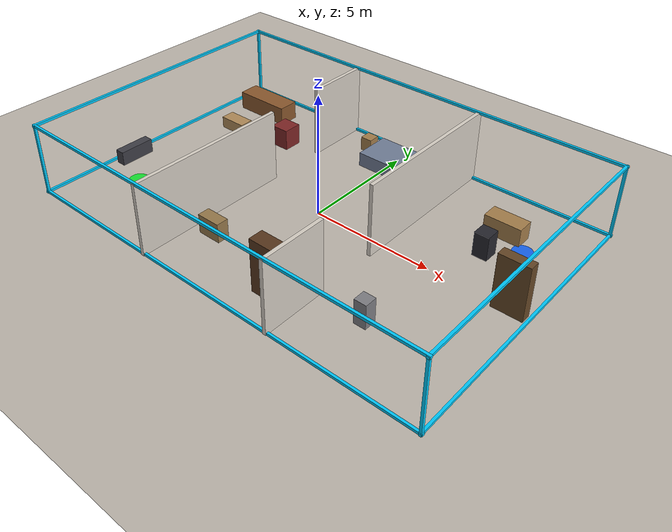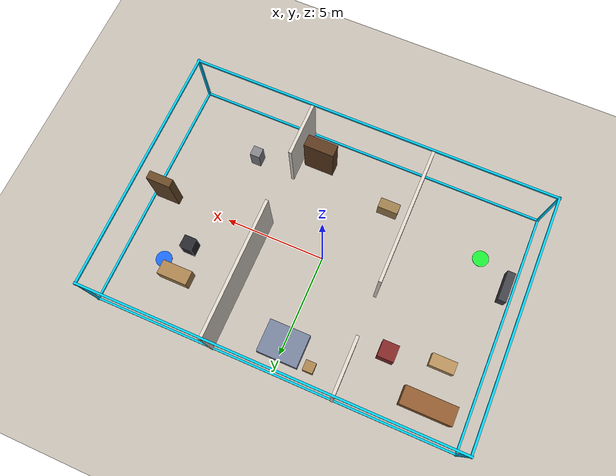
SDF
<?xml version="1.0" ?>
<sdf version="1.9">
  <world name="house_3room">
    <physics type="ode">
      <max_step_size>0.004</max_step_size>
      <real_time_factor>1.0</real_time_factor>
      <real_time_update_rate>250</real_time_update_rate>
    </physics>
    <plugin name="gz::sim::systems::Physics" filename="gz-sim-physics-system"/>
    <plugin name="gz::sim::systems::UserCommands" filename="gz-sim-user-commands-system"/>
    <plugin name="gz::sim::systems::SceneBroadcaster" filename="gz-sim-scene-broadcaster-system"/>
    <plugin name="gz::sim::systems::Contact" filename="gz-sim-contact-system"/>
    <plugin name="gz::sim::systems::Imu" filename="gz-sim-imu-system"/>
    <plugin name="gz::sim::systems::AirPressure" filename="gz-sim-air-pressure-system"/>
    <plugin name="gz::sim::systems::ApplyLinkWrench" filename="gz-sim-apply-link-wrench-system"/>
    <plugin name="gz::sim::systems::Sensors" filename="gz-sim-sensors-system">
      <render_engine>ogre2</render_engine>
    </plugin>
    <gui fullscreen="false"/>

    <!-- Sunlight -->
    <light type="directional" name="sun">
      <cast_shadows>true</cast_shadows>
      <pose>0 0 10 0 0 0</pose>
      <diffuse>0.8 0.8 0.8 1</diffuse>
      <specular>0.2 0.2 0.2 1</specular>
      <attenuation>
        <range>1000</range>
        <constant>0.9</constant>
        <linear>0.01</linear>
        <quadratic>0.001</quadratic>
      </attenuation>
      <direction>-0.5 0.1 -0.9</direction>
    </light>

    <!-- GROUND PLANE — 18m x 12m                                     -->
    <model name="ground_plane">
      <static>true</static>
      <pose>0 0 0 0 0 0</pose>
      <link name="link">
        <collision name="collision">
          <geometry><plane><normal>0 0 1</normal><size>18 12</size></plane></geometry>
          <surface>
            <friction><ode><mu>100</mu><mu2>50</mu2></ode></friction>
          </surface>
        </collision>
        <visual name="visual">
          <geometry><plane><normal>0 0 1</normal><size>18 12</size></plane></geometry>
          <material>
            <ambient>0.75 0.72 0.68 1</ambient>
            <diffuse>0.75 0.72 0.68 1</diffuse>
          </material>
        </visual>
      </link>
    </model>

    <!-- OUTER WALLS — Invisible collisions + cyan wireframe          -->
    <!-- House: 18m wide (X: -9 to +9) × 12m deep (Y: -6 to +6)     -->
    <model name="outer_walls">
      <static>true</static>
      <link name="walls_link">
        <!-- Solid invisible collision walls -->
        <collision name="c_north"><pose>0 6 1.5 0 0 0</pose><geometry><box><size>18 0.15 3</size></box></geometry></collision>
        <collision name="c_south"><pose>0 -6 1.5 0 0 0</pose><geometry><box><size>18 0.15 3</size></box></geometry></collision>
        <collision name="c_east"><pose>9 0 1.5 0 0 0</pose><geometry><box><size>0.15 12 3</size></box></geometry></collision>
        <collision name="c_west"><pose>-9 0 1.5 0 0 0</pose><geometry><box><size>0.15 12 3</size></box></geometry></collision>
        <collision name="c_ceiling"><pose>0 0 3 0 0 0</pose><geometry><box><size>18 12 0.1</size></box></geometry></collision>

        <!-- Cyan wireframe: 4 vertical corner pillars -->
        <visual name="vp_nw"><pose>-8.925 5.925 1.5 0 0 0</pose><geometry><box><size>0.1 0.1 3</size></box></geometry><material><ambient>0 0.8 1 1</ambient><diffuse>0 0.8 1 1</diffuse></material></visual>
        <visual name="vp_ne"><pose>8.925 5.925 1.5 0 0 0</pose><geometry><box><size>0.1 0.1 3</size></box></geometry><material><ambient>0 0.8 1 1</ambient><diffuse>0 0.8 1 1</diffuse></material></visual>
        <visual name="vp_sw"><pose>-8.925 -5.925 1.5 0 0 0</pose><geometry><box><size>0.1 0.1 3</size></box></geometry><material><ambient>0 0.8 1 1</ambient><diffuse>0 0.8 1 1</diffuse></material></visual>
        <visual name="vp_se"><pose>8.925 -5.925 1.5 0 0 0</pose><geometry><box><size>0.1 0.1 3</size></box></geometry><material><ambient>0 0.8 1 1</ambient><diffuse>0 0.8 1 1</diffuse></material></visual>

        <!-- Cyan wireframe: top edges -->
        <visual name="vt_n"><pose>0 5.925 3 0 0 0</pose><geometry><box><size>18 0.1 0.1</size></box></geometry><material><ambient>0 0.8 1 1</ambient><diffuse>0 0.8 1 1</diffuse></material></visual>
        <visual name="vt_s"><pose>0 -5.925 3 0 0 0</pose><geometry><box><size>18 0.1 0.1</size></box></geometry><material><ambient>0 0.8 1 1</ambient><diffuse>0 0.8 1 1</diffuse></material></visual>
        <visual name="vt_e"><pose>8.925 0 3 0 0 0</pose><geometry><box><size>0.1 12 0.1</size></box></geometry><material><ambient>0 0.8 1 1</ambient><diffuse>0 0.8 1 1</diffuse></material></visual>
        <visual name="vt_w"><pose>-8.925 0 3 0 0 0</pose><geometry><box><size>0.1 12 0.1</size></box></geometry><material><ambient>0 0.8 1 1</ambient><diffuse>0 0.8 1 1</diffuse></material></visual>

        <!-- Cyan wireframe: bottom edges -->
        <visual name="vb_n"><pose>0 5.925 0.05 0 0 0</pose><geometry><box><size>18 0.1 0.1</size></box></geometry><material><ambient>0 0.8 1 1</ambient><diffuse>0 0.8 1 1</diffuse></material></visual>
        <visual name="vb_s"><pose>0 -5.925 0.05 0 0 0</pose><geometry><box><size>18 0.1 0.1</size></box></geometry><material><ambient>0 0.8 1 1</ambient><diffuse>0 0.8 1 1</diffuse></material></visual>
        <visual name="vb_e"><pose>8.925 0 0.05 0 0 0</pose><geometry><box><size>0.1 12 0.1</size></box></geometry><material><ambient>0 0.8 1 1</ambient><diffuse>0 0.8 1 1</diffuse></material></visual>
        <visual name="vb_w"><pose>-8.925 0 0.05 0 0 0</pose><geometry><box><size>0.1 12 0.1</size></box></geometry><material><ambient>0 0.8 1 1</ambient><diffuse>0 0.8 1 1</diffuse></material></visual>
      </link>
    </model>

    <!-- INTERNAL WALLS — Dividing the 3 rooms with doorways          -->
    <!--  Wall 1 at X = -3: Living Room | Bedroom                    -->
    <!--    Door at Y = +2 (2.5m wide: Y = 0.75 to 3.25)             -->
    <!--  Wall 2 at X = +3: Bedroom     | Study                      -->
    <!--    Door at Y = -2 (2.5m wide: Y = -3.25 to -0.75)           -->

    <!-- Internal Wall 1 (X = -3) — Lower segment: Y = -6 to +0.75 -->
    <model name="iwall1_lower">
      <static>true</static>
      <link name="link">
        <pose>-3 -2.625 1.5 0 0 0</pose>
        <collision name="collision"><geometry><box><size>0.15 6.75 3</size></box></geometry></collision>
        <visual name="visual"><geometry><box><size>0.15 6.75 3</size></box></geometry>
          <material><ambient>0.85 0.82 0.78 1</ambient><diffuse>0.85 0.82 0.78 1</diffuse></material>
        </visual>
      </link>
    </model>

    <!-- Internal Wall 1 (X = -3) — Upper segment: Y = +3.25 to +6 -->
    <model name="iwall1_upper">
      <static>true</static>
      <link name="link">
        <pose>-3 4.625 1.5 0 0 0</pose>
        <collision name="collision"><geometry><box><size>0.15 2.75 3</size></box></geometry></collision>
        <visual name="visual"><geometry><box><size>0.15 2.75 3</size></box></geometry>
          <material><ambient>0.85 0.82 0.78 1</ambient><diffuse>0.85 0.82 0.78 1</diffuse></material>
        </visual>
      </link>
    </model>

    <!-- Internal Wall 2 (X = +3) — Lower segment: Y = -6 to -3.25 -->
    <model name="iwall2_lower">
      <static>true</static>
      <link name="link">
        <pose>3 -4.625 1.5 0 0 0</pose>
        <collision name="collision"><geometry><box><size>0.15 2.75 3</size></box></geometry></collision>
        <visual name="visual"><geometry><box><size>0.15 2.75 3</size></box></geometry>
          <material><ambient>0.85 0.82 0.78 1</ambient><diffuse>0.85 0.82 0.78 1</diffuse></material>
        </visual>
      </link>
    </model>

    <!-- Internal Wall 2 (X = +3) — Upper segment: Y = -0.75 to +6 -->
    <model name="iwall2_upper">
      <static>true</static>
      <link name="link">
        <pose>3 2.625 1.5 0 0 0</pose>
        <collision name="collision"><geometry><box><size>0.15 6.75 3</size></box></geometry></collision>
        <visual name="visual"><geometry><box><size>0.15 6.75 3</size></box></geometry>
          <material><ambient>0.85 0.82 0.78 1</ambient><diffuse>0.85 0.82 0.78 1</diffuse></material>
        </visual>
      </link>
    </model>

    <!-- No lintels above doorways — they would appear as obstacles
         in the 2D projected map and block navigation paths -->

    <!-- ROOM 1: LIVING ROOM (X: -9 to -3)                           -->

    <!-- Sofa — Large brown couch against north wall -->
    <model name="living_sofa">
      <static>true</static>
      <pose>-7 4.5 0.4 0 0 0</pose>
      <link name="link">
        <collision name="collision"><geometry><box><size>2.5 0.9 0.8</size></box></geometry></collision>
        <visual name="visual"><geometry><box><size>2.5 0.9 0.8</size></box></geometry>
          <material><ambient>0.55 0.35 0.18 1</ambient><diffuse>0.55 0.35 0.18 1</diffuse></material>
        </visual>
      </link>
    </model>

    <!-- Coffee Table — Low wooden table in front of sofa -->
    <model name="living_coffee_table">
      <static>true</static>
      <pose>-7 2.5 0.25 0 0 0</pose>
      <link name="link">
        <collision name="collision"><geometry><box><size>1.2 0.6 0.5</size></box></geometry></collision>
        <visual name="visual"><geometry><box><size>1.2 0.6 0.5</size></box></geometry>
          <material><ambient>0.7 0.55 0.35 1</ambient><diffuse>0.7 0.55 0.35 1</diffuse></material>
        </visual>
      </link>
    </model>

    <!-- TV Stand — Against west wall -->
    <model name="living_tv_stand">
      <static>true</static>
      <pose>-8.5 -2 0.3 0 0 0</pose>
      <link name="link">
        <collision name="collision"><geometry><box><size>0.4 1.5 0.6</size></box></geometry></collision>
        <visual name="visual"><geometry><box><size>0.4 1.5 0.6</size></box></geometry>
          <material><ambient>0.25 0.25 0.28 1</ambient><diffuse>0.25 0.25 0.28 1</diffuse></material>
        </visual>
      </link>
    </model>

    <!-- Armchair — Near the doorway -->
    <model name="living_armchair">
      <static>true</static>
      <pose>-4.5 3 0.45 0 0 0</pose>
      <link name="link">
        <collision name="collision"><geometry><box><size>0.8 0.8 0.9</size></box></geometry></collision>
        <visual name="visual"><geometry><box><size>0.8 0.8 0.9</size></box></geometry>
          <material><ambient>0.5 0.15 0.15 1</ambient><diffuse>0.5 0.15 0.15 1</diffuse></material>
        </visual>
      </link>
    </model>

    <!-- ROOM 2: BEDROOM (X: -3 to +3) — Drone spawns here at (0,0) -->

    <!-- Bed — Against north wall -->
    <model name="bedroom_bed">
      <static>true</static>
      <pose>0 4.5 0.3 0 0 0</pose>
      <link name="link">
        <collision name="collision"><geometry><box><size>2.0 1.6 0.6</size></box></geometry></collision>
        <visual name="visual"><geometry><box><size>2.0 1.6 0.6</size></box></geometry>
          <material><ambient>0.45 0.5 0.6 1</ambient><diffuse>0.45 0.5 0.6 1</diffuse></material>
        </visual>
      </link>
    </model>

    <!-- Nightstand — Next to bed -->
    <model name="bedroom_nightstand">
      <static>true</static>
      <pose>-1.5 5 0.3 0 0 0</pose>
      <link name="link">
        <collision name="collision"><geometry><box><size>0.5 0.5 0.6</size></box></geometry></collision>
        <visual name="visual"><geometry><box><size>0.5 0.5 0.6</size></box></geometry>
          <material><ambient>0.65 0.5 0.3 1</ambient><diffuse>0.65 0.5 0.3 1</diffuse></material>
        </visual>
      </link>
    </model>

    <!-- Wardrobe — Tall, against south wall -->
    <model name="bedroom_wardrobe">
      <static>true</static>
      <pose>2 -4.5 1.1 0 0 0</pose>
      <link name="link">
        <collision name="collision"><geometry><box><size>1.5 0.6 2.2</size></box></geometry></collision>
        <visual name="visual"><geometry><box><size>1.5 0.6 2.2</size></box></geometry>
          <material><ambient>0.35 0.22 0.12 1</ambient><diffuse>0.35 0.22 0.12 1</diffuse></material>
        </visual>
      </link>
    </model>

    <!-- Dresser — South side -->
    <model name="bedroom_dresser">
      <static>true</static>
      <pose>-2 -3.5 0.4 0 0 0</pose>
      <link name="link">
        <collision name="collision"><geometry><box><size>1.0 0.5 0.8</size></box></geometry></collision>
        <visual name="visual"><geometry><box><size>1.0 0.5 0.8</size></box></geometry>
          <material><ambient>0.6 0.48 0.3 1</ambient><diffuse>0.6 0.48 0.3 1</diffuse></material>
        </visual>
      </link>
    </model>

    <!-- ROOM 3: STUDY ROOM (X: +3 to +9)                            -->

    <!-- Desk — Work area -->
    <model name="study_desk">
      <static>true</static>
      <pose>6 3.5 0.375 0 0 0</pose>
      <link name="link">
        <collision name="collision"><geometry><box><size>1.5 0.7 0.75</size></box></geometry></collision>
        <visual name="visual"><geometry><box><size>1.5 0.7 0.75</size></box></geometry>
          <material><ambient>0.65 0.5 0.3 1</ambient><diffuse>0.65 0.5 0.3 1</diffuse></material>
        </visual>
      </link>
    </model>

    <!-- Office Chair -->
    <model name="study_chair">
      <static>true</static>
      <pose>6 2 0.5 0 0 0</pose>
      <link name="link">
        <collision name="collision"><geometry><box><size>0.6 0.6 1.0</size></box></geometry></collision>
        <visual name="visual"><geometry><box><size>0.6 0.6 1.0</size></box></geometry>
          <material><ambient>0.15 0.15 0.18 1</ambient><diffuse>0.15 0.15 0.18 1</diffuse></material>
        </visual>
      </link>
    </model>

    <!-- Bookshelf — Tall, against east wall -->
    <model name="study_bookshelf">
      <static>true</static>
      <pose>8.2 0 1.1 0 0 0</pose>
      <link name="link">
        <collision name="collision"><geometry><box><size>1.2 0.4 2.2</size></box></geometry></collision>
        <visual name="visual"><geometry><box><size>1.2 0.4 2.2</size></box></geometry>
          <material><ambient>0.4 0.28 0.15 1</ambient><diffuse>0.4 0.28 0.15 1</diffuse></material>
        </visual>
      </link>
    </model>

    <!-- Filing Cabinet -->
    <model name="study_cabinet">
      <static>true</static>
      <pose>5 -3.5 0.5 0 0 0</pose>
      <link name="link">
        <collision name="collision"><geometry><box><size>0.5 0.5 1.0</size></box></geometry></collision>
        <visual name="visual"><geometry><box><size>0.5 0.5 1.0</size></box></geometry>
          <material><ambient>0.5 0.5 0.52 1</ambient><diffuse>0.5 0.5 0.52 1</diffuse></material>
        </visual>
      </link>
    </model>

    <!-- MARKERS — Start (green) and Destination (blue)               -->

    <!-- Start: Green disc in Living Room -->
    <model name="marker_start">
      <static>true</static>
      <pose>-7 -3 0.01 0 0 0</pose>
      <link name="link">
        <visual name="visual">
          <geometry><cylinder><radius>0.4</radius><length>0.02</length></cylinder></geometry>
          <material><ambient>0.1 0.9 0.2 1</ambient><diffuse>0.1 0.9 0.2 1</diffuse></material>
        </visual>
      </link>
    </model>

    <!-- Destination: Blue disc in Study Room -->
    <model name="marker_destination">
      <static>true</static>
      <pose>7 3 0.01 0 0 0</pose>
      <link name="link">
        <visual name="visual">
          <geometry><cylinder><radius>0.4</radius><length>0.02</length></cylinder></geometry>
          <material><ambient>0.1 0.4 0.95 1</ambient><diffuse>0.1 0.4 0.95 1</diffuse></material>
        </visual>
      </link>
    </model>

  </world>
</sdf>
